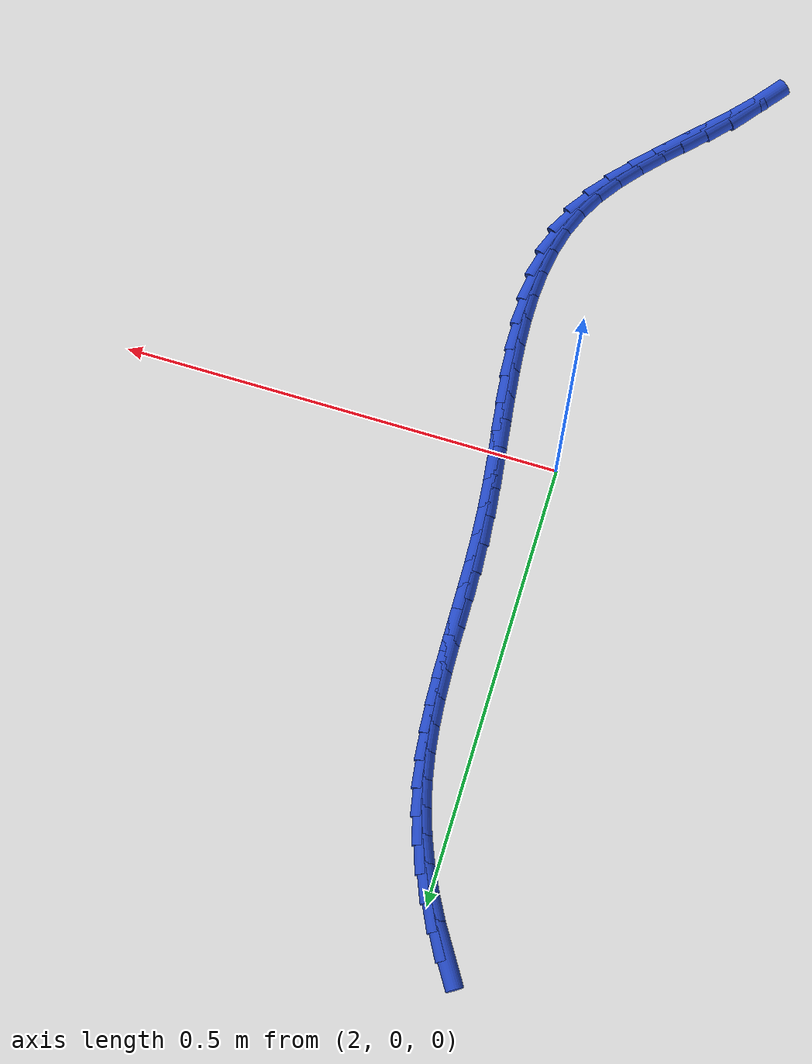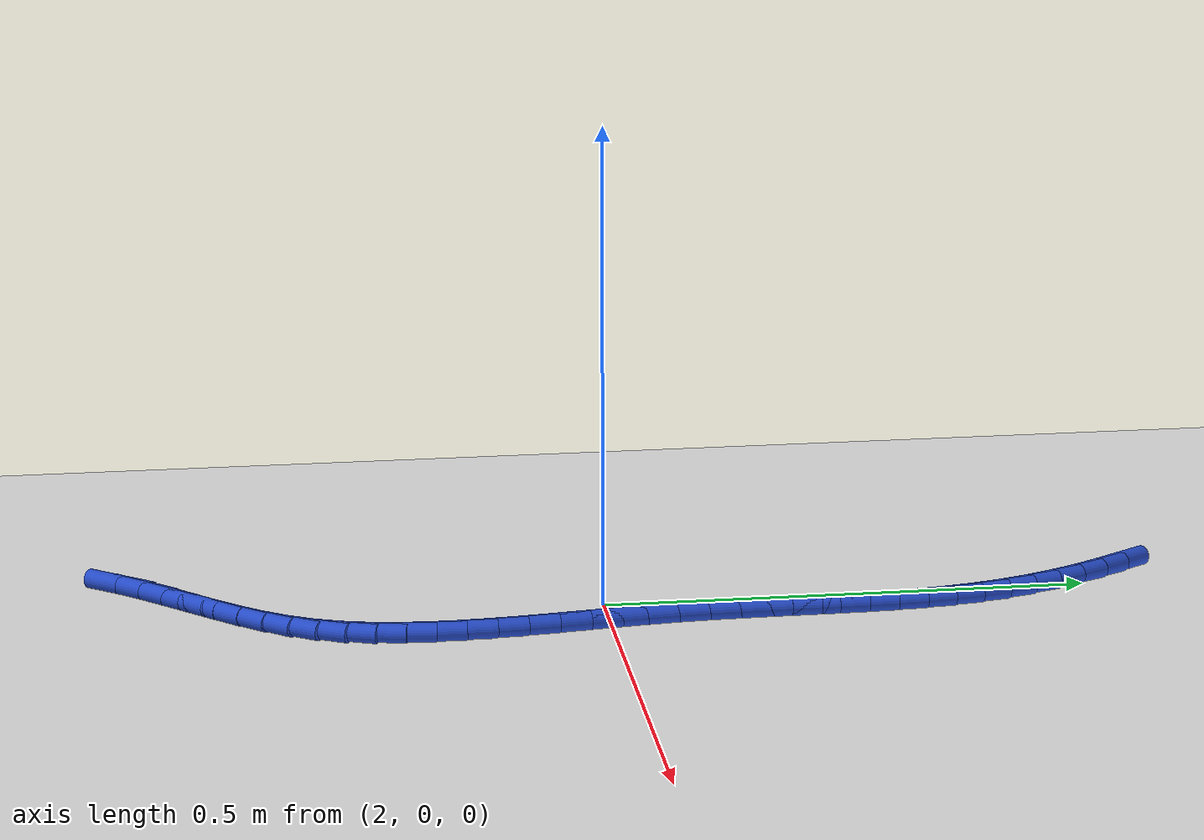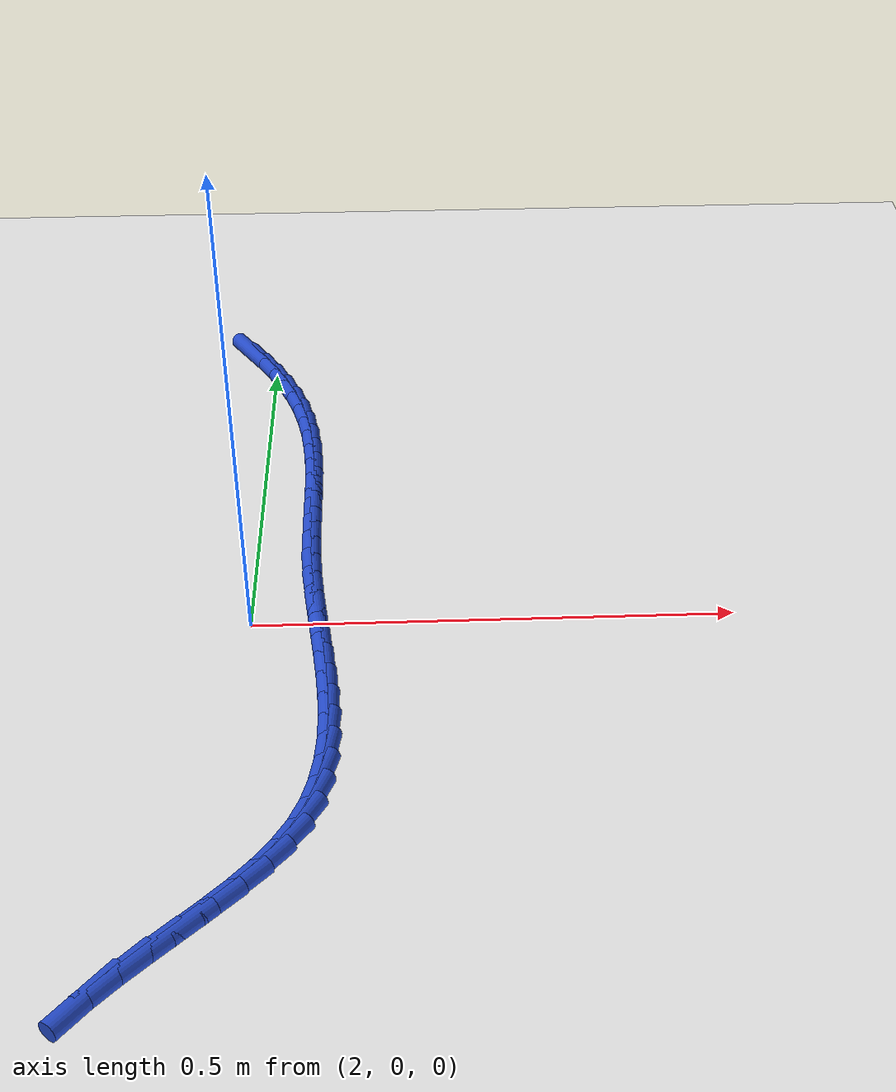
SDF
<sdf version="1.6">
 <world name="default">
  <model name="ground_plane">
   <static>1</static>
   <link name="link">
    <collision name="collision">
     <geometry><plane><normal>0 0 1</normal><size>100 100</size></plane></geometry>
     <surface><friction><ode><mu>100</mu><mu2>50</mu2></ode></friction></surface>
    </collision>
    <visual name="visual">
     <cast_shadows>0</cast_shadows>
     <geometry><plane><normal>0 0 1</normal><size>100 100</size></plane></geometry>
     <material>
      <script><uri>file://media/materials/scripts/gazebo.material</uri><name>Gazebo/WhiteGlow</name></script>
     </material>
    </visual>
   </link>
  </model>
  <model name="line">
   <link name="link_92">
    <pose>1.9681259988265998 0.5424491488402619 0.01 0 1.57 -1.0107322810930839</pose>
    <collision name="collision">
     <geometry><cylinder><radius>0.01</radius><length>0.08</length></cylinder></geometry>
    </collision>
    <visual name="visual">
     <material>
      <script><name>Gazebo/Blue</name><uri>file://media/materials/scripts/gazebo.material</uri></script>
     </material>
     <geometry><cylinder><radius>0.01</radius><length>0.08</length></cylinder></geometry>
    </visual>
   </link>
   <link name="link_93">
    <pose>1.9847535838358565 0.5159315137121809 0.01 0 1.57 -1.0663890056970327</pose>
    <collision name="collision">
     <geometry><cylinder><radius>0.01</radius><length>0.08</length></cylinder></geometry>
    </collision>
    <visual name="visual">
     <material>
      <script><name>Gazebo/Blue</name><uri>file://media/materials/scripts/gazebo.material</uri></script>
     </material>
     <geometry><cylinder><radius>0.01</radius><length>0.08</length></cylinder></geometry>
    </visual>
   </link>
   <link name="link_94">
    <pose>1.9997932513314207 0.48868766455682794 0.01 0 1.57 -1.124503354738619</pose>
    <collision name="collision">
     <geometry><cylinder><radius>0.01</radius><length>0.08</length></cylinder></geometry>
    </collision>
    <visual name="visual">
     <material>
      <script><name>Gazebo/Blue</name><uri>file://media/materials/scripts/gazebo.material</uri></script>
     </material>
     <geometry><cylinder><radius>0.01</radius><length>0.08</length></cylinder></geometry>
    </visual>
   </link>
   <link name="link_95">
    <pose>2.013127127428689 0.4608211613407063 0.01 0 1.57 -1.1855620856854663</pose>
    <collision name="collision">
     <geometry><cylinder><radius>0.01</radius><length>0.08</length></cylinder></geometry>
    </collision>
    <visual name="visual">
     <material>
      <script><name>Gazebo/Blue</name><uri>file://media/materials/scripts/gazebo.material</uri></script>
     </material>
     <geometry><cylinder><radius>0.01</radius><length>0.08</length></cylinder></geometry>
    </visual>
   </link>
   <link name="link_96">
    <pose>2.0246373382430574 0.4324355640303217 0.01 0 1.57 -1.2500368573088008</pose>
    <collision name="collision">
     <geometry><cylinder><radius>0.01</radius><length>0.08</length></cylinder></geometry>
    </collision>
    <visual name="visual">
     <material>
      <script><name>Gazebo/Blue</name><uri>file://media/materials/scripts/gazebo.material</uri></script>
     </material>
     <geometry><cylinder><radius>0.01</radius><length>0.08</length></cylinder></geometry>
    </visual>
   </link>
   <link name="link_97">
    <pose>2.0342060098899215 0.40363443259217835 0.01 0 1.57 -1.31816218100768</pose>
    <collision name="collision">
     <geometry><cylinder><radius>0.01</radius><length>0.08</length></cylinder></geometry>
    </collision>
    <visual name="visual">
     <material>
      <script><name>Gazebo/Blue</name><uri>file://media/materials/scripts/gazebo.material</uri></script>
     </material>
     <geometry><cylinder><radius>0.01</radius><length>0.08</length></cylinder></geometry>
    </visual>
   </link>
   <link name="link_98">
    <pose>2.041721989546058 0.37451962265156347 0.01 0 1.57 -1.3841241078278732</pose>
    <collision name="collision">
     <geometry><cylinder><radius>0.01</radius><length>0.08</length></cylinder></geometry>
    </collision>
    <visual name="visual">
     <material>
      <script><name>Gazebo/Blue</name><uri>file://media/materials/scripts/gazebo.material</uri></script>
     </material>
     <geometry><cylinder><radius>0.01</radius><length>0.08</length></cylinder></geometry>
    </visual>
   </link>
   <link name="link_99">
    <pose>2.0472703426450494 0.3451432323856727 0.01 0 1.57 -1.4403645978682895</pose>
    <collision name="collision">
     <geometry><cylinder><radius>0.01</radius><length>0.08</length></cylinder></geometry>
    </collision>
    <visual name="visual">
     <material>
      <script><name>Gazebo/Blue</name><uri>file://media/materials/scripts/gazebo.material</uri></script>
     </material>
     <geometry><cylinder><radius>0.01</radius><length>0.08</length></cylinder></geometry>
    </visual>
   </link>
   <link name="link_100">
    <pose>2.051158716347003 0.3155009172181872 0.01 0 1.57 -1.4858264935469763</pose>
    <collision name="collision">
     <geometry><cylinder><radius>0.01</radius><length>0.08</length></cylinder></geometry>
    </collision>
    <visual name="visual">
     <material>
      <script><name>Gazebo/Blue</name><uri>file://media/materials/scripts/gazebo.material</uri></script>
     </material>
     <geometry><cylinder><radius>0.01</radius><length>0.08</length></cylinder></geometry>
    </visual>
   </link>
   <link name="link_101">
    <pose>2.053706777850163 0.28558528450563575 0.01 0 1.57 -1.5202565707188394</pose>
    <collision name="collision">
     <geometry><cylinder><radius>0.01</radius><length>0.08</length></cylinder></geometry>
    </collision>
    <visual name="visual">
     <material>
      <script><name>Gazebo/Blue</name><uri>file://media/materials/scripts/gazebo.material</uri></script>
     </material>
     <geometry><cylinder><radius>0.01</radius><length>0.08</length></cylinder></geometry>
    </visual>
   </link>
   <link name="link_102">
    <pose>2.055234194352772 0.2553889416045457 0.01 0 1.57 -1.5436927891465206</pose>
    <collision name="collision">
     <geometry><cylinder><radius>0.01</radius><length>0.08</length></cylinder></geometry>
    </collision>
    <visual name="visual">
     <material>
      <script><name>Gazebo/Blue</name><uri>file://media/materials/scripts/gazebo.material</uri></script>
     </material>
     <geometry><cylinder><radius>0.01</radius><length>0.08</length></cylinder></geometry>
    </visual>
   </link>
   <link name="link_103">
    <pose>2.056060633053073 0.22490449587144568 0.01 0 1.57 -1.5563357056409761</pose>
    <collision name="collision">
     <geometry><cylinder><radius>0.01</radius><length>0.08</length></cylinder></geometry>
    </collision>
    <visual name="visual">
     <material>
      <script><name>Gazebo/Blue</name><uri>file://media/materials/scripts/gazebo.material</uri></script>
     </material>
     <geometry><cylinder><radius>0.01</radius><length>0.08</length></cylinder></geometry>
    </visual>
   </link>
   <link name="link_104">
    <pose>2.0565057611493103 0.19412455466286305 0.01 0 1.57 -1.5584594435952026</pose>
    <collision name="collision">
     <geometry><cylinder><radius>0.01</radius><length>0.08</length></cylinder></geometry>
    </collision>
    <visual name="visual">
     <material>
      <script><name>Gazebo/Blue</name><uri>file://media/materials/scripts/gazebo.material</uri></script>
     </material>
     <geometry><cylinder><radius>0.01</radius><length>0.08</length></cylinder></geometry>
    </visual>
   </link>
   <link name="link_105">
    <pose>2.0568892458397263 0.1630417253353264 0.01 0 1.57 -1.550364480112793</pose>
    <collision name="collision">
     <geometry><cylinder><radius>0.01</radius><length>0.08</length></cylinder></geometry>
    </collision>
    <visual name="visual">
     <material>
      <script><name>Gazebo/Blue</name><uri>file://media/materials/scripts/gazebo.material</uri></script>
     </material>
     <geometry><cylinder><radius>0.01</radius><length>0.08</length></cylinder></geometry>
    </visual>
   </link>
   <link name="link_106">
    <pose>2.057530754322564 0.13164861524536306 0.01 0 1.57 -1.5323677820574633</pose>
    <collision name="collision">
     <geometry><cylinder><radius>0.01</radius><length>0.08</length></cylinder></geometry>
    </collision>
    <visual name="visual">
     <material>
      <script><name>Gazebo/Blue</name><uri>file://media/materials/scripts/gazebo.material</uri></script>
     </material>
     <geometry><cylinder><radius>0.01</radius><length>0.08</length></cylinder></geometry>
    </visual>
   </link>
   <link name="link_107">
    <pose>2.0587499537960676 0.09993783174950177 0.01 0 1.57 -1.504836740683299</pose>
    <collision name="collision">
     <geometry><cylinder><radius>0.01</radius><length>0.08</length></cylinder></geometry>
    </collision>
    <visual name="visual">
     <material>
      <script><name>Gazebo/Blue</name><uri>file://media/materials/scripts/gazebo.material</uri></script>
     </material>
     <geometry><cylinder><radius>0.01</radius><length>0.08</length></cylinder></geometry>
    </visual>
   </link>
   <link name="link_108">
    <pose>2.0608660891913795 0.06790206920773448 0.01 0 1.57 -1.473604537674242</pose>
    <collision name="collision">
     <geometry><cylinder><radius>0.01</radius><length>0.08</length></cylinder></geometry>
    </collision>
    <visual name="visual">
     <material>
      <script><name>Gazebo/Blue</name><uri>file://media/materials/scripts/gazebo.material</uri></script>
     </material>
     <geometry><cylinder><radius>0.01</radius><length>0.08</length></cylinder></geometry>
    </visual>
   </link>
   <link name="link_109">
    <pose>2.0640183232602225 0.035571125921043195 0.01 0 1.57 -1.4523424745259974</pose>
    <collision name="collision">
     <geometry><cylinder><radius>0.01</radius><length>0.08</length></cylinder></geometry>
    </collision>
    <visual name="visual">
     <material>
      <script><name>Gazebo/Blue</name><uri>file://media/materials/scripts/gazebo.material</uri></script>
     </material>
     <geometry><cylinder><radius>0.01</radius><length>0.08</length></cylinder></geometry>
    </visual>
   </link>
   <link name="link_110">
    <pose>2.067886378717941 0.0030694627275472527 0.01 0 1.57 -1.4426672929321251</pose>
    <collision name="collision">
     <geometry><cylinder><radius>0.01</radius><length>0.08</length></cylinder></geometry>
    </collision>
    <visual name="visual">
     <material>
      <script><name>Gazebo/Blue</name><uri>file://media/materials/scripts/gazebo.material</uri></script>
     </material>
     <geometry><cylinder><radius>0.01</radius><length>0.08</length></cylinder></geometry>
    </visual>
   </link>
   <link name="link_111">
    <pose>2.072077768126404 -0.02946358143130206 0.01 0 1.57 -1.4443436006212471</pose>
    <collision name="collision">
     <geometry><cylinder><radius>0.01</radius><length>0.08</length></cylinder></geometry>
    </collision>
    <visual name="visual">
     <material>
      <script><name>Gazebo/Blue</name><uri>file://media/materials/scripts/gazebo.material</uri></script>
     </material>
     <geometry><cylinder><radius>0.01</radius><length>0.08</length></cylinder></geometry>
    </visual>
   </link>
   <link name="link_112">
    <pose>2.0762000040474793 -0.061888667614054885 0.01 0 1.57 -1.4575217622596377</pose>
    <collision name="collision">
     <geometry><cylinder><radius>0.01</radius><length>0.08</length></cylinder></geometry>
    </collision>
    <visual name="visual">
     <material>
      <script><name>Gazebo/Blue</name><uri>file://media/materials/scripts/gazebo.material</uri></script>
     </material>
     <geometry><cylinder><radius>0.01</radius><length>0.08</length></cylinder></geometry>
    </visual>
   </link>
   <link name="link_113">
    <pose>2.0798605990430348 -0.09406645687926078 0.01 0 1.57 -1.482746352998124</pose>
    <collision name="collision">
     <geometry><cylinder><radius>0.01</radius><length>0.08</length></cylinder></geometry>
    </collision>
    <visual name="visual">
     <material>
      <script><name>Gazebo/Blue</name><uri>file://media/materials/scripts/gazebo.material</uri></script>
     </material>
     <geometry><cylinder><radius>0.01</radius><length>0.08</length></cylinder></geometry>
    </visual>
   </link>
   <link name="link_114">
    <pose>2.082667065674939 -0.12585761028547013 0.01 0 1.57 -1.5209466660869326</pose>
    <collision name="collision">
     <geometry><cylinder><radius>0.01</radius><length>0.08</length></cylinder></geometry>
    </collision>
    <visual name="visual">
     <material>
      <script><name>Gazebo/Blue</name><uri>file://media/materials/scripts/gazebo.material</uri></script>
     </material>
     <geometry><cylinder><radius>0.01</radius><length>0.08</length></cylinder></geometry>
    </visual>
   </link>
   <link name="link_115">
    <pose>2.084226916505061 -0.15712278889123107 0.01 0 1.57 1.5682063731156186</pose>
    <collision name="collision">
     <geometry><cylinder><radius>0.01</radius><length>0.08</length></cylinder></geometry>
    </collision>
    <visual name="visual">
     <material>
      <script><name>Gazebo/Blue</name><uri>file://media/materials/scripts/gazebo.material</uri></script>
     </material>
     <geometry><cylinder><radius>0.01</radius><length>0.08</length></cylinder></geometry>
    </visual>
   </link>
   <link name="link_116">
    <pose>2.0841476640952665 -0.1877226537550938 0.01 0 1.57 1.5000694523856726</pose>
    <collision name="collision">
     <geometry><cylinder><radius>0.01</radius><length>0.08</length></cylinder></geometry>
    </collision>
    <visual name="visual">
     <material>
      <script><name>Gazebo/Blue</name><uri>file://media/materials/scripts/gazebo.material</uri></script>
     </material>
     <geometry><cylinder><radius>0.01</radius><length>0.08</length></cylinder></geometry>
    </visual>
   </link>
   <link name="link_117">
    <pose>2.082036821007427 -0.2175178659356082 0.01 0 1.57 1.41488895682435</pose>
    <collision name="collision">
     <geometry><cylinder><radius>0.01</radius><length>0.08</length></cylinder></geometry>
    </collision>
    <visual name="visual">
     <material>
      <script><name>Gazebo/Blue</name><uri>file://media/materials/scripts/gazebo.material</uri></script>
     </material>
     <geometry><cylinder><radius>0.01</radius><length>0.08</length></cylinder></geometry>
    </visual>
   </link>
   <link name="link_118">
    <pose>2.077501899803408 -0.24636908649132438 0.01 0 1.57 1.3119862969633187</pose>
    <collision name="collision">
     <geometry><cylinder><radius>0.01</radius><length>0.08</length></cylinder></geometry>
    </collision>
    <visual name="visual">
     <material>
      <script><name>Gazebo/Blue</name><uri>file://media/materials/scripts/gazebo.material</uri></script>
     </material>
     <geometry><cylinder><radius>0.01</radius><length>0.08</length></cylinder></geometry>
    </visual>
   </link>
   <link name="link_119">
    <pose>2.0701504130450785 -0.2741369764807906 0.01 0 1.57 1.192160259366427</pose>
    <collision name="collision">
     <geometry><cylinder><radius>0.01</radius><length>0.08</length></cylinder></geometry>
    </collision>
    <visual name="visual">
     <material>
      <script><name>Gazebo/Blue</name><uri>file://media/materials/scripts/gazebo.material</uri></script>
     </material>
     <geometry><cylinder><radius>0.01</radius><length>0.08</length></cylinder></geometry>
    </visual>
   </link>
   <link name="link_120">
    <pose>2.059589873294308 -0.30068219696255727 0.01 0 1.57 1.0617807123418026</pose>
    <collision name="collision">
     <geometry><cylinder><radius>0.01</radius><length>0.08</length></cylinder></geometry>
    </collision>
    <visual name="visual">
     <material>
      <script><name>Gazebo/Blue</name><uri>file://media/materials/scripts/gazebo.material</uri></script>
     </material>
     <geometry><cylinder><radius>0.01</radius><length>0.08</length></cylinder></geometry>
    </visual>
   </link>
   <link name="link_121">
    <pose>2.0455164775777686 -0.3259003062602591 0.01 0 1.57 0.9500076461539967</pose>
    <collision name="collision">
     <geometry><cylinder><radius>0.01</radius><length>0.08</length></cylinder></geometry>
    </collision>
    <visual name="visual">
     <material>
      <script><name>Gazebo/Blue</name><uri>file://media/materials/scripts/gazebo.material</uri></script>
     </material>
     <geometry><cylinder><radius>0.01</radius><length>0.08</length></cylinder></geometry>
    </visual>
   </link>
   <link name="link_122">
    <pose>2.0283133952928623 -0.34995718576910895 0.01 0 1.57 0.8683251608078294</pose>
    <collision name="collision">
     <geometry><cylinder><radius>0.01</radius><length>0.08</length></cylinder></geometry>
    </collision>
    <visual name="visual">
     <material>
      <script><name>Gazebo/Blue</name><uri>file://media/materials/scripts/gazebo.material</uri></script>
     </material>
     <geometry><cylinder><radius>0.01</radius><length>0.08</length></cylinder></geometry>
    </visual>
   </link>
   <link name="link_123">
    <pose>2.0086844881941626 -0.37314490906717124 0.01 0 1.57 0.8141045142550025</pose>
    <collision name="collision">
     <geometry><cylinder><radius>0.01</radius><length>0.08</length></cylinder></geometry>
    </collision>
    <visual name="visual">
     <material>
      <script><name>Gazebo/Blue</name><uri>file://media/materials/scripts/gazebo.material</uri></script>
     </material>
     <geometry><cylinder><radius>0.01</radius><length>0.08</length></cylinder></geometry>
    </visual>
   </link>
   <link name="link_124">
    <pose>1.9873354259461375 -0.39575626114359175 0.01 0 1.57 0.7845975182955236</pose>
    <collision name="collision">
     <geometry><cylinder><radius>0.01</radius><length>0.08</length></cylinder></geometry>
    </collision>
    <visual name="visual">
     <material>
      <script><name>Gazebo/Blue</name><uri>file://media/materials/scripts/gazebo.material</uri></script>
     </material>
     <geometry><cylinder><radius>0.01</radius><length>0.08</length></cylinder></geometry>
    </visual>
   </link>
   <link name="link_125">
    <pose>1.9649718782132541 -0.4180840269875155 0.01 0 1.57 0.7779465359556419</pose>
    <collision name="collision">
     <geometry><cylinder><radius>0.01</radius><length>0.08</length></cylinder></geometry>
    </collision>
    <visual name="visual">
     <material>
      <script><name>Gazebo/Blue</name><uri>file://media/materials/scripts/gazebo.material</uri></script>
     </material>
     <geometry><cylinder><radius>0.01</radius><length>0.08</length></cylinder></geometry>
    </visual>
   </link>
   <link name="link_126">
    <pose>1.9422995146599786 -0.4404209915880881 0.01 0 1.57 0.7934897829093456</pose>
    <collision name="collision">
     <geometry><cylinder><radius>0.01</radius><length>0.08</length></cylinder></geometry>
    </collision>
    <visual name="visual">
     <material>
      <script><name>Gazebo/Blue</name><uri>file://media/materials/scripts/gazebo.material</uri></script>
     </material>
     <geometry><cylinder><radius>0.01</radius><length>0.08</length></cylinder></geometry>
    </visual>
   </link>
   <link name="link_127">
    <pose>1.9200240049507806 -0.46305993993445366 0.01 0 1.57 0.8317707462163167</pose>
    <collision name="collision">
     <geometry><cylinder><radius>0.01</radius><length>0.08</length></cylinder></geometry>
    </collision>
    <visual name="visual">
     <material>
      <script><name>Gazebo/Blue</name><uri>file://media/materials/scripts/gazebo.material</uri></script>
     </material>
     <geometry><cylinder><radius>0.01</radius><length>0.08</length></cylinder></geometry>
    </visual>
   </link>
   <link name="link_128">
    <pose>1.8988510187501266 -0.4862936570157576 0.01 0 1.57 0.8943444276340563</pose>
    <collision name="collision">
     <geometry><cylinder><radius>0.01</radius><length>0.08</length></cylinder></geometry>
    </collision>
    <visual name="visual">
     <material>
      <script><name>Gazebo/Blue</name><uri>file://media/materials/scripts/gazebo.material</uri></script>
     </material>
     <geometry><cylinder><radius>0.01</radius><length>0.08</length></cylinder></geometry>
    </visual>
   </link>
  </model>
 </world>
</sdf>
